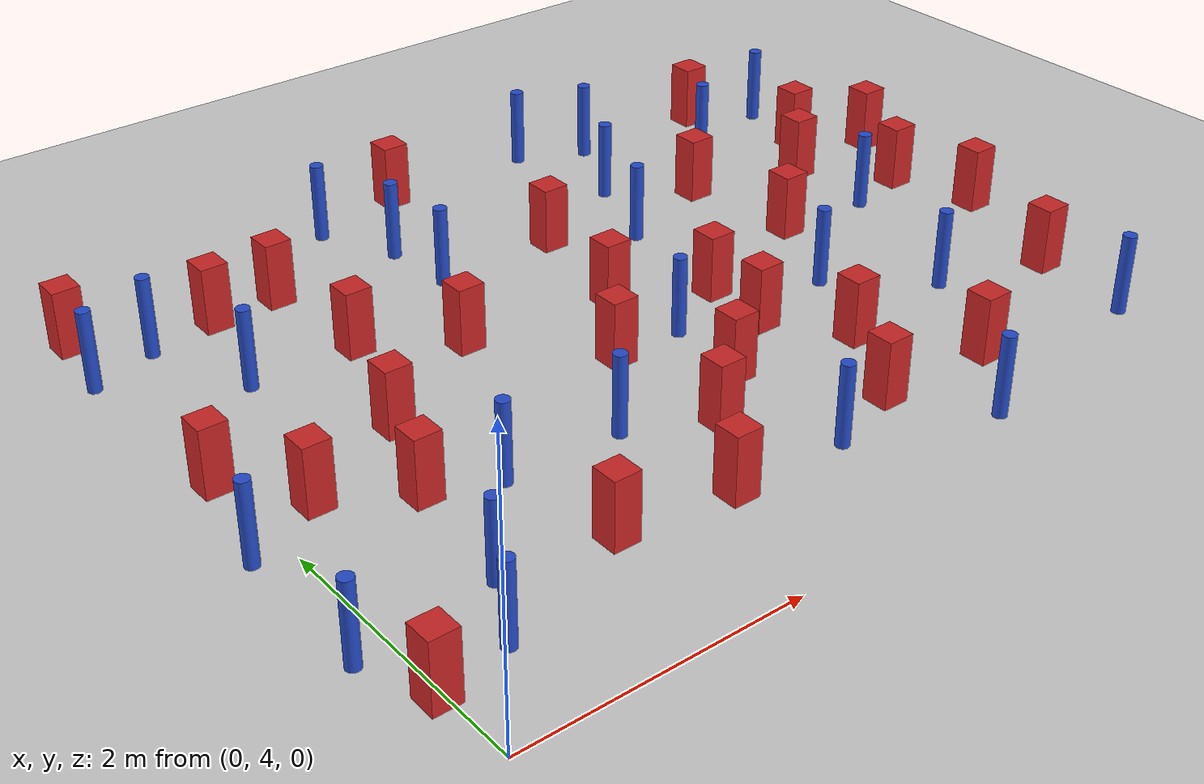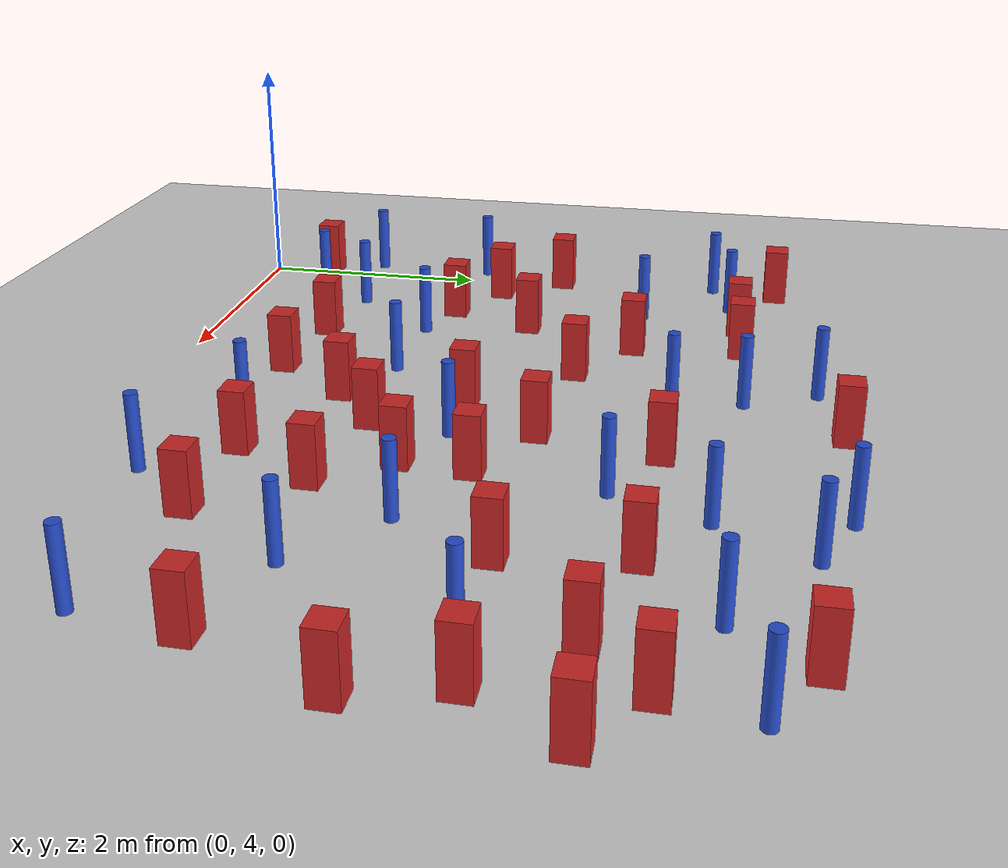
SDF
<sdf version="1.6">
 <world name="default">
  <model name="ground_plane">
   <static>1</static>
   <link name="link">
    <collision name="collision">
     <geometry><plane><normal>0 0 1</normal><size>100 100</size></plane></geometry>
     <surface><friction><ode><mu>100</mu><mu2>50</mu2></ode></friction></surface>
    </collision>
    <visual name="visual">
     <cast_shadows>0</cast_shadows>
     <geometry><plane><normal>0 0 1</normal><size>100 100</size></plane></geometry>
     <material>
      <ambient>1.0 1.0 1.0 1.0</ambient>
      <diffuse>0.8 0.8 0.8 1.0</diffuse>
      <specular>0.01 0.01 0.01 1.000000</specular>
     </material>
    </visual>
   </link>
  </model>
  <model name="pole_obstacle6">
   <static>true</static>
   <pose>2.43207186262 8.13492291357 -9.4761961606e-06 5.49618799729e-07 2.36310414e-07 -1.55090534824e-07</pose>
   <link name="link">
    <pose>0 0 0.3 0 -0 0</pose>
    <inertial>
     <mass>1</mass>
     <inertia><ixx>0.145833</ixx><ixy>0</ixy><ixz>0</ixz><iyy>0.145833</iyy><iyz>0</iyz><izz>0.125</izz></inertia>
    </inertial>
    <collision name="collision">
     <geometry><cylinder><radius>0.05</radius><length>.6</length></cylinder></geometry>
    </collision>
    <visual name="visual">
     <geometry><cylinder><radius>0.05</radius><length>.6</length></cylinder></geometry>
     <material>
      <script><name>Gazebo/Blue</name><uri>file://media/materials/scripts/gazebo.material</uri></script>
     </material>
    </visual>
   </link>
  </model>
  <model name="square_post_obstacle11">
   <static>true</static>
   <pose>0.863928847242 8.6175819762 -6.11067671241e-07 -5.50515727128e-06 -8.79689657224e-07 2.37013304536e-05</pose>
   <link name="link">
    <pose>0 0 0.25 0 -0 0</pose>
    <inertial>
     <mass>100</mass>
     <inertia>
      <ixx>0.166667</ixx>
      <ixy>0</ixy>
      <ixz>0</ixz>
      <iyy>0.166667</iyy>
      <iyz>0</iyz>
      <izz>0.166667</izz>
     </inertia>
    </inertial>
    <collision name="collision"><geometry><box><size>.2 .2 .5</size></box></geometry></collision>
    <visual name="visual">
     <geometry><box><size>.2 .2 .5</size></box></geometry>
     <material>
      <script><name>Gazebo/Red</name><uri>file://media/materials/scripts/gazebo.material</uri></script>
     </material>
    </visual>
   </link>
  </model>
  <model name="pole_obstacle16">
   <static>true</static>
   <pose>1.33987430858 5.87765892796 -9.47619616065e-06 5.49618799737e-07 2.36310414061e-07 -1.550905348e-07</pose>
   <link name="link">
    <pose>0 0 0.3 0 -0 0</pose>
    <inertial>
     <mass>1</mass>
     <inertia><ixx>0.145833</ixx><ixy>0</ixy><ixz>0</ixz><iyy>0.145833</iyy><iyz>0</iyz><izz>0.125</izz></inertia>
    </inertial>
    <collision name="collision">
     <geometry><cylinder><radius>0.05</radius><length>.6</length></cylinder></geometry>
    </collision>
    <visual name="visual">
     <geometry><cylinder><radius>0.05</radius><length>.6</length></cylinder></geometry>
     <material>
      <script><name>Gazebo/Blue</name><uri>file://media/materials/scripts/gazebo.material</uri></script>
     </material>
    </visual>
   </link>
  </model>
  <model name="pole_obstacle20">
   <static>true</static>
   <pose>0.742205972916 5.1449259144 -9.47619616065e-06 5.49618799737e-07 2.36310414065e-07 -1.55090534796e-07</pose>
   <link name="link">
    <pose>0 0 0.3 0 -0 0</pose>
    <inertial>
     <mass>1</mass>
     <inertia><ixx>0.145833</ixx><ixy>0</ixy><ixz>0</ixz><iyy>0.145833</iyy><iyz>0</iyz><izz>0.125</izz></inertia>
    </inertial>
    <collision name="collision">
     <geometry><cylinder><radius>0.05</radius><length>.6</length></cylinder></geometry>
    </collision>
    <visual name="visual">
     <geometry><cylinder><radius>0.05</radius><length>.6</length></cylinder></geometry>
     <material>
      <script><name>Gazebo/Blue</name><uri>file://media/materials/scripts/gazebo.material</uri></script>
     </material>
    </visual>
   </link>
  </model>
  <model name="pole_obstacle32">
   <static>true</static>
   <pose>4.22618861333 4.52051680901 -9.47619616065e-06 5.49618799737e-07 2.36310414037e-07 -1.55090534814e-07</pose>
   <link name="link">
    <pose>0 0 0.3 0 -0 0</pose>
    <inertial>
     <mass>1</mass>
     <inertia><ixx>0.145833</ixx><ixy>0</ixy><ixz>0</ixz><iyy>0.145833</iyy><iyz>0</iyz><izz>0.125</izz></inertia>
    </inertial>
    <collision name="collision">
     <geometry><cylinder><radius>0.05</radius><length>.6</length></cylinder></geometry>
    </collision>
    <visual name="visual">
     <geometry><cylinder><radius>0.05</radius><length>.6</length></cylinder></geometry>
     <material>
      <script><name>Gazebo/Blue</name><uri>file://media/materials/scripts/gazebo.material</uri></script>
     </material>
    </visual>
   </link>
  </model>
  <model name="square_post_obstacle28">
   <static>true</static>
   <pose>-0.0483559570447 8.94037576271 -6.11067671241e-07 -5.50515727128e-06 -8.79689657224e-07 2.37013304536e-05</pose>
   <link name="link">
    <pose>0 0 0.25 0 -0 0</pose>
    <inertial>
     <mass>100</mass>
     <inertia>
      <ixx>0.166667</ixx>
      <ixy>0</ixy>
      <ixz>0</ixz>
      <iyy>0.166667</iyy>
      <iyz>0</iyz>
      <izz>0.166667</izz>
     </inertia>
    </inertial>
    <collision name="collision"><geometry><box><size>.2 .2 .5</size></box></geometry></collision>
    <visual name="visual">
     <geometry><box><size>.2 .2 .5</size></box></geometry>
     <material>
      <script><name>Gazebo/Red</name><uri>file://media/materials/scripts/gazebo.material</uri></script>
     </material>
    </visual>
   </link>
  </model>
  <model name="pole_obstacle42">
   <static>true</static>
   <pose>5.17454983534 5.89900063454 -9.47619616065e-06 5.49618799737e-07 2.36310414037e-07 -1.55090534814e-07</pose>
   <link name="link">
    <pose>0 0 0.3 0 -0 0</pose>
    <inertial>
     <mass>1</mass>
     <inertia><ixx>0.145833</ixx><ixy>0</ixy><ixz>0</ixz><iyy>0.145833</iyy><iyz>0</iyz><izz>0.125</izz></inertia>
    </inertial>
    <collision name="collision">
     <geometry><cylinder><radius>0.05</radius><length>.6</length></cylinder></geometry>
    </collision>
    <visual name="visual">
     <geometry><cylinder><radius>0.05</radius><length>.6</length></cylinder></geometry>
     <material>
      <script><name>Gazebo/Blue</name><uri>file://media/materials/scripts/gazebo.material</uri></script>
     </material>
    </visual>
   </link>
  </model>
  <model name="square_post_obstacle31">
   <static>true</static>
   <pose>3.83713167161 6.82906425294 -6.11067671241e-07 -5.50515727128e-06 -8.79689657224e-07 2.37013304536e-05</pose>
   <link name="link">
    <pose>0 0 0.25 0 -0 0</pose>
    <inertial>
     <mass>100</mass>
     <inertia>
      <ixx>0.166667</ixx>
      <ixy>0</ixy>
      <ixz>0</ixz>
      <iyy>0.166667</iyy>
      <iyz>0</iyz>
      <izz>0.166667</izz>
     </inertia>
    </inertial>
    <collision name="collision"><geometry><box><size>.2 .2 .5</size></box></geometry></collision>
    <visual name="visual">
     <geometry><box><size>.2 .2 .5</size></box></geometry>
     <material>
      <script><name>Gazebo/Red</name><uri>file://media/materials/scripts/gazebo.material</uri></script>
     </material>
    </visual>
   </link>
  </model>
  <model name="square_post_obstacle35">
   <static>true</static>
   <pose>1.51465073356 5.0295000646 -6.11067671241e-07 -5.50515727128e-06 -8.79689657224e-07 2.37013304536e-05</pose>
   <link name="link">
    <pose>0 0 0.25 0 -0 0</pose>
    <inertial>
     <mass>100</mass>
     <inertia>
      <ixx>0.166667</ixx>
      <ixy>0</ixy>
      <ixz>0</ixz>
      <iyy>0.166667</iyy>
      <iyz>0</iyz>
      <izz>0.166667</izz>
     </inertia>
    </inertial>
    <collision name="collision"><geometry><box><size>.2 .2 .5</size></box></geometry></collision>
    <visual name="visual">
     <geometry><box><size>.2 .2 .5</size></box></geometry>
     <material>
      <script><name>Gazebo/Red</name><uri>file://media/materials/scripts/gazebo.material</uri></script>
     </material>
    </visual>
   </link>
  </model>
  <model name="square_post_obstacle40">
   <static>true</static>
   <pose>6.46954681803 7.924433819 -6.11067671241e-07 -5.50515727128e-06 -8.79689657224e-07 2.37013304536e-05</pose>
   <link name="link">
    <pose>0 0 0.25 0 -0 0</pose>
    <inertial>
     <mass>100</mass>
     <inertia>
      <ixx>0.166667</ixx>
      <ixy>0</ixy>
      <ixz>0</ixz>
      <iyy>0.166667</iyy>
      <iyz>0</iyz>
      <izz>0.166667</izz>
     </inertia>
    </inertial>
    <collision name="collision"><geometry><box><size>.2 .2 .5</size></box></geometry></collision>
    <visual name="visual">
     <geometry><box><size>.2 .2 .5</size></box></geometry>
     <material>
      <script><name>Gazebo/Red</name><uri>file://media/materials/scripts/gazebo.material</uri></script>
     </material>
    </visual>
   </link>
  </model>
  <model name="square_post_obstacle42">
   <static>true</static>
   <pose>2.05650922155 7.31954242078 -6.11067671241e-07 -5.50515727128e-06 -8.79689657224e-07 2.37013304536e-05</pose>
   <link name="link">
    <pose>0 0 0.25 0 -0 0</pose>
    <inertial>
     <mass>100</mass>
     <inertia>
      <ixx>0.166667</ixx>
      <ixy>0</ixy>
      <ixz>0</ixz>
      <iyy>0.166667</iyy>
      <iyz>0</iyz>
      <izz>0.166667</izz>
     </inertia>
    </inertial>
    <collision name="collision"><geometry><box><size>.2 .2 .5</size></box></geometry></collision>
    <visual name="visual">
     <geometry><box><size>.2 .2 .5</size></box></geometry>
     <material>
      <script><name>Gazebo/Red</name><uri>file://media/materials/scripts/gazebo.material</uri></script>
     </material>
    </visual>
   </link>
  </model>
  <model name="pole_obstacle57">
   <static>true</static>
   <pose>6.11625431628 8.87869215951 -9.47619616065e-06 5.49618799737e-07 2.36310414065e-07 -1.55090534796e-07</pose>
   <link name="link">
    <pose>0 0 0.3 0 -0 0</pose>
    <inertial>
     <mass>1</mass>
     <inertia><ixx>0.145833</ixx><ixy>0</ixy><ixz>0</ixz><iyy>0.145833</iyy><iyz>0</iyz><izz>0.125</izz></inertia>
    </inertial>
    <collision name="collision">
     <geometry><cylinder><radius>0.05</radius><length>.6</length></cylinder></geometry>
    </collision>
    <visual name="visual">
     <geometry><cylinder><radius>0.05</radius><length>.6</length></cylinder></geometry>
     <material>
      <script><name>Gazebo/Blue</name><uri>file://media/materials/scripts/gazebo.material</uri></script>
     </material>
    </visual>
   </link>
  </model>
  <model name="pole_obstacle59">
   <static>true</static>
   <pose>5.3128377282 8.63013611454 -9.47619616065e-06 5.49618799737e-07 2.36310414065e-07 -1.55090534796e-07</pose>
   <link name="link">
    <pose>0 0 0.3 0 -0 0</pose>
    <inertial>
     <mass>1</mass>
     <inertia><ixx>0.145833</ixx><ixy>0</ixy><ixz>0</ixz><iyy>0.145833</iyy><iyz>0</iyz><izz>0.125</izz></inertia>
    </inertial>
    <collision name="collision">
     <geometry><cylinder><radius>0.05</radius><length>.6</length></cylinder></geometry>
    </collision>
    <visual name="visual">
     <geometry><cylinder><radius>0.05</radius><length>.6</length></cylinder></geometry>
     <material>
      <script><name>Gazebo/Blue</name><uri>file://media/materials/scripts/gazebo.material</uri></script>
     </material>
    </visual>
   </link>
  </model>
  <model name="square_post_obstacle46">
   <static>true</static>
   <pose>2.3420618887 4.92568637448 -6.11067671241e-07 -5.50515727128e-06 -8.79689657224e-07 2.37013304536e-05</pose>
   <link name="link">
    <pose>0 0 0.25 0 -0 0</pose>
    <inertial>
     <mass>100</mass>
     <inertia>
      <ixx>0.166667</ixx>
      <ixy>0</ixy>
      <ixz>0</ixz>
      <iyy>0.166667</iyy>
      <iyz>0</iyz>
      <izz>0.166667</izz>
     </inertia>
    </inertial>
    <collision name="collision"><geometry><box><size>.2 .2 .5</size></box></geometry></collision>
    <visual name="visual">
     <geometry><box><size>.2 .2 .5</size></box></geometry>
     <material>
      <script><name>Gazebo/Red</name><uri>file://media/materials/scripts/gazebo.material</uri></script>
     </material>
    </visual>
   </link>
  </model>
  <model name="square_post_obstacle49">
   <static>true</static>
   <pose>4.7629140104 8.09287901922 -6.11067671241e-07 -5.50515727128e-06 -8.79689657224e-07 2.37013304536e-05</pose>
   <link name="link">
    <pose>0 0 0.25 0 -0 0</pose>
    <inertial>
     <mass>100</mass>
     <inertia>
      <ixx>0.166667</ixx>
      <ixy>0</ixy>
      <ixz>0</ixz>
      <iyy>0.166667</iyy>
      <iyz>0</iyz>
      <izz>0.166667</izz>
     </inertia>
    </inertial>
    <collision name="collision"><geometry><box><size>.2 .2 .5</size></box></geometry></collision>
    <visual name="visual">
     <geometry><box><size>.2 .2 .5</size></box></geometry>
     <material>
      <script><name>Gazebo/Red</name><uri>file://media/materials/scripts/gazebo.material</uri></script>
     </material>
    </visual>
   </link>
  </model>
  <model name="square_post_obstacle50">
   <static>true</static>
   <pose>1.13335853004 6.77449179941 -6.11067671241e-07 -5.50515727128e-06 -8.79689657224e-07 2.37013304536e-05</pose>
   <link name="link">
    <pose>0 0 0.25 0 -0 0</pose>
    <inertial>
     <mass>100</mass>
     <inertia>
      <ixx>0.166667</ixx>
      <ixy>0</ixy>
      <ixz>0</ixz>
      <iyy>0.166667</iyy>
      <iyz>0</iyz>
      <izz>0.166667</izz>
     </inertia>
    </inertial>
    <collision name="collision"><geometry><box><size>.2 .2 .5</size></box></geometry></collision>
    <visual name="visual">
     <geometry><box><size>.2 .2 .5</size></box></geometry>
     <material>
      <script><name>Gazebo/Red</name><uri>file://media/materials/scripts/gazebo.material</uri></script>
     </material>
    </visual>
   </link>
  </model>
  <model name="pole_obstacle68">
   <static>true</static>
   <pose>-0.238954877606 6.12001920168 -9.47619616065e-06 5.49618799737e-07 2.36310414064e-07 -1.55090534799e-07</pose>
   <link name="link">
    <pose>0 0 0.3 0 -0 0</pose>
    <inertial>
     <mass>1</mass>
     <inertia><ixx>0.145833</ixx><ixy>0</ixy><ixz>0</ixz><iyy>0.145833</iyy><iyz>0</iyz><izz>0.125</izz></inertia>
    </inertial>
    <collision name="collision">
     <geometry><cylinder><radius>0.05</radius><length>.6</length></cylinder></geometry>
    </collision>
    <visual name="visual">
     <geometry><cylinder><radius>0.05</radius><length>.6</length></cylinder></geometry>
     <material>
      <script><name>Gazebo/Blue</name><uri>file://media/materials/scripts/gazebo.material</uri></script>
     </material>
    </visual>
   </link>
  </model>
  <model name="square_post_obstacle52">
   <static>true</static>
   <pose>1.44782764579 7.73571127424 -6.11067671241e-07 -5.50515727128e-06 -8.79689657224e-07 2.37013304536e-05</pose>
   <link name="link">
    <pose>0 0 0.25 0 -0 0</pose>
    <inertial>
     <mass>100</mass>
     <inertia>
      <ixx>0.166667</ixx>
      <ixy>0</ixy>
      <ixz>0</ixz>
      <iyy>0.166667</iyy>
      <iyz>0</iyz>
      <izz>0.166667</izz>
     </inertia>
    </inertial>
    <collision name="collision"><geometry><box><size>.2 .2 .5</size></box></geometry></collision>
    <visual name="visual">
     <geometry><box><size>.2 .2 .5</size></box></geometry>
     <material>
      <script><name>Gazebo/Red</name><uri>file://media/materials/scripts/gazebo.material</uri></script>
     </material>
    </visual>
   </link>
  </model>
  <model name="square_post_obstacle53">
   <static>true</static>
   <pose>4.89098669698 7.18992147861 -6.11067671241e-07 -5.50515727128e-06 -8.79689657224e-07 2.37013304536e-05</pose>
   <link name="link">
    <pose>0 0 0.25 0 -0 0</pose>
    <inertial>
     <mass>100</mass>
     <inertia>
      <ixx>0.166667</ixx>
      <ixy>0</ixy>
      <ixz>0</ixz>
      <iyy>0.166667</iyy>
      <iyz>0</iyz>
      <izz>0.166667</izz>
     </inertia>
    </inertial>
    <collision name="collision"><geometry><box><size>.2 .2 .5</size></box></geometry></collision>
    <visual name="visual">
     <geometry><box><size>.2 .2 .5</size></box></geometry>
     <material>
      <script><name>Gazebo/Red</name><uri>file://media/materials/scripts/gazebo.material</uri></script>
     </material>
    </visual>
   </link>
  </model>
  <model name="square_post_obstacle56">
   <static>true</static>
   <pose>1.36745683117 8.6449078487 -6.11067671241e-07 -5.50515727128e-06 -8.79689657224e-07 2.37013304536e-05</pose>
   <link name="link">
    <pose>0 0 0.25 0 -0 0</pose>
    <inertial>
     <mass>100</mass>
     <inertia>
      <ixx>0.166667</ixx>
      <ixy>0</ixy>
      <ixz>0</ixz>
      <iyy>0.166667</iyy>
      <iyz>0</iyz>
      <izz>0.166667</izz>
     </inertia>
    </inertial>
    <collision name="collision"><geometry><box><size>.2 .2 .5</size></box></geometry></collision>
    <visual name="visual">
     <geometry><box><size>.2 .2 .5</size></box></geometry>
     <material>
      <script><name>Gazebo/Red</name><uri>file://media/materials/scripts/gazebo.material</uri></script>
     </material>
    </visual>
   </link>
  </model>
  <model name="square_post_obstacle68">
   <static>true</static>
   <pose>4.68829394861 5.07552768889 -6.11067671241e-07 -5.50515727128e-06 -8.79689657224e-07 2.37013304536e-05</pose>
   <link name="link">
    <pose>0 0 0.25 0 -0 0</pose>
    <inertial>
     <mass>100</mass>
     <inertia>
      <ixx>0.166667</ixx>
      <ixy>0</ixy>
      <ixz>0</ixz>
      <iyy>0.166667</iyy>
      <iyz>0</iyz>
      <izz>0.166667</izz>
     </inertia>
    </inertial>
    <collision name="collision"><geometry><box><size>.2 .2 .5</size></box></geometry></collision>
    <visual name="visual">
     <geometry><box><size>.2 .2 .5</size></box></geometry>
     <material>
      <script><name>Gazebo/Red</name><uri>file://media/materials/scripts/gazebo.material</uri></script>
     </material>
    </visual>
   </link>
  </model>
  <model name="pole_obstacle80">
   <static>true</static>
   <pose>0.668537305933 7.75599905433 -9.47619616065e-06 5.49618799737e-07 2.36310414065e-07 -1.55090534796e-07</pose>
   <link name="link">
    <pose>0 0 0.3 0 -0 0</pose>
    <inertial>
     <mass>1</mass>
     <inertia><ixx>0.145833</ixx><ixy>0</ixy><ixz>0</ixz><iyy>0.145833</iyy><iyz>0</iyz><izz>0.125</izz></inertia>
    </inertial>
    <collision name="collision">
     <geometry><cylinder><radius>0.05</radius><length>.6</length></cylinder></geometry>
    </collision>
    <visual name="visual">
     <geometry><cylinder><radius>0.05</radius><length>.6</length></cylinder></geometry>
     <material>
      <script><name>Gazebo/Blue</name><uri>file://media/materials/scripts/gazebo.material</uri></script>
     </material>
    </visual>
   </link>
  </model>
  <model name="pole_obstacle82">
   <static>true</static>
   <pose>-0.137236762534 8.36235014784 -9.47619616065e-06 5.49618799737e-07 2.36310414038e-07 -1.55090534815e-07</pose>
   <link name="link">
    <pose>0 0 0.3 0 -0 0</pose>
    <inertial>
     <mass>1</mass>
     <inertia><ixx>0.145833</ixx><ixy>0</ixy><ixz>0</ixz><iyy>0.145833</iyy><iyz>0</iyz><izz>0.125</izz></inertia>
    </inertial>
    <collision name="collision">
     <geometry><cylinder><radius>0.05</radius><length>.6</length></cylinder></geometry>
    </collision>
    <visual name="visual">
     <geometry><cylinder><radius>0.05</radius><length>.6</length></cylinder></geometry>
     <material>
      <script><name>Gazebo/Blue</name><uri>file://media/materials/scripts/gazebo.material</uri></script>
     </material>
    </visual>
   </link>
  </model>
  <model name="pole_obstacle84">
   <static>true</static>
   <pose>3.20759305503 4.90517188989 -9.47619616065e-06 5.49618799738e-07 2.3631041406e-07 -1.55090534801e-07</pose>
   <link name="link">
    <pose>0 0 0.3 0 -0 0</pose>
    <inertial>
     <mass>1</mass>
     <inertia><ixx>0.145833</ixx><ixy>0</ixy><ixz>0</ixz><iyy>0.145833</iyy><iyz>0</iyz><izz>0.125</izz></inertia>
    </inertial>
    <collision name="collision">
     <geometry><cylinder><radius>0.05</radius><length>.6</length></cylinder></geometry>
    </collision>
    <visual name="visual">
     <geometry><cylinder><radius>0.05</radius><length>.6</length></cylinder></geometry>
     <material>
      <script><name>Gazebo/Blue</name><uri>file://media/materials/scripts/gazebo.material</uri></script>
     </material>
    </visual>
   </link>
  </model>
  <model name="square_post_obstacle83">
   <static>true</static>
   <pose>5.97994175165 5.6477463719 -6.11067671241e-07 -5.50515727128e-06 -8.79689657224e-07 2.37013304536e-05</pose>
   <link name="link">
    <pose>0 0 0.25 0 -0 0</pose>
    <inertial>
     <mass>100</mass>
     <inertia>
      <ixx>0.166667</ixx>
      <ixy>0</ixy>
      <ixz>0</ixz>
      <iyy>0.166667</iyy>
      <iyz>0</iyz>
      <izz>0.166667</izz>
     </inertia>
    </inertial>
    <collision name="collision"><geometry><box><size>.2 .2 .5</size></box></geometry></collision>
    <visual name="visual">
     <geometry><box><size>.2 .2 .5</size></box></geometry>
     <material>
      <script><name>Gazebo/Red</name><uri>file://media/materials/scripts/gazebo.material</uri></script>
     </material>
    </visual>
   </link>
  </model>
  <model name="square_post_obstacle90">
   <static>true</static>
   <pose>3.37375898683 8.12603994693 -6.11067671241e-07 -5.50515727128e-06 -8.79689657224e-07 2.37013304536e-05</pose>
   <link name="link">
    <pose>0 0 0.25 0 -0 0</pose>
    <inertial>
     <mass>100</mass>
     <inertia>
      <ixx>0.166667</ixx>
      <ixy>0</ixy>
      <ixz>0</ixz>
      <iyy>0.166667</iyy>
      <iyz>0</iyz>
      <izz>0.166667</izz>
     </inertia>
    </inertial>
    <collision name="collision"><geometry><box><size>.2 .2 .5</size></box></geometry></collision>
    <visual name="visual">
     <geometry><box><size>.2 .2 .5</size></box></geometry>
     <material>
      <script><name>Gazebo/Red</name><uri>file://media/materials/scripts/gazebo.material</uri></script>
     </material>
    </visual>
   </link>
  </model>
  <model name="square_post_obstacle92">
   <static>true</static>
   <pose>-0.0422790247516 4.5587872964 -6.11067671241e-07 -5.50515727128e-06 -8.79689657224e-07 2.37013304536e-05</pose>
   <link name="link">
    <pose>0 0 0.25 0 -0 0</pose>
    <inertial>
     <mass>100</mass>
     <inertia>
      <ixx>0.166667</ixx>
      <ixy>0</ixy>
      <ixz>0</ixz>
      <iyy>0.166667</iyy>
      <iyz>0</iyz>
      <izz>0.166667</izz>
     </inertia>
    </inertial>
    <collision name="collision"><geometry><box><size>.2 .2 .5</size></box></geometry></collision>
    <visual name="visual">
     <geometry><box><size>.2 .2 .5</size></box></geometry>
     <material>
      <script><name>Gazebo/Red</name><uri>file://media/materials/scripts/gazebo.material</uri></script>
     </material>
    </visual>
   </link>
  </model>
  <model name="square_post_obstacle94">
   <static>true</static>
   <pose>2.8469483621 9.44492391961 -6.11067671241e-07 -5.50515727128e-06 -8.79689657224e-07 2.37013304536e-05</pose>
   <link name="link">
    <pose>0 0 0.25 0 -0 0</pose>
    <inertial>
     <mass>100</mass>
     <inertia>
      <ixx>0.166667</ixx>
      <ixy>0</ixy>
      <ixz>0</ixz>
      <iyy>0.166667</iyy>
      <iyz>0</iyz>
      <izz>0.166667</izz>
     </inertia>
    </inertial>
    <collision name="collision"><geometry><box><size>.2 .2 .5</size></box></geometry></collision>
    <visual name="visual">
     <geometry><box><size>.2 .2 .5</size></box></geometry>
     <material>
      <script><name>Gazebo/Red</name><uri>file://media/materials/scripts/gazebo.material</uri></script>
     </material>
    </visual>
   </link>
  </model>
  <model name="square_post_obstacle96">
   <static>true</static>
   <pose>3.22564016477 5.91921045773 -6.11067671241e-07 -5.50515727128e-06 -8.79689657224e-07 2.37013304536e-05</pose>
   <link name="link">
    <pose>0 0 0.25 0 -0 0</pose>
    <inertial>
     <mass>100</mass>
     <inertia>
      <ixx>0.166667</ixx>
      <ixy>0</ixy>
      <ixz>0</ixz>
      <iyy>0.166667</iyy>
      <iyz>0</iyz>
      <izz>0.166667</izz>
     </inertia>
    </inertial>
    <collision name="collision"><geometry><box><size>.2 .2 .5</size></box></geometry></collision>
    <visual name="visual">
     <geometry><box><size>.2 .2 .5</size></box></geometry>
     <material>
      <script><name>Gazebo/Red</name><uri>file://media/materials/scripts/gazebo.material</uri></script>
     </material>
    </visual>
   </link>
  </model>
  <model name="pole_obstacle104">
   <static>true</static>
   <pose>4.04860355962 9.4295022542 -9.47619616065e-06 5.49618799737e-07 2.36310414062e-07 -1.55090534799e-07</pose>
   <link name="link">
    <pose>0 0 0.3 0 -0 0</pose>
    <inertial>
     <mass>1</mass>
     <inertia><ixx>0.145833</ixx><ixy>0</ixy><ixz>0</ixz><iyy>0.145833</iyy><iyz>0</iyz><izz>0.125</izz></inertia>
    </inertial>
    <collision name="collision">
     <geometry><cylinder><radius>0.05</radius><length>.6</length></cylinder></geometry>
    </collision>
    <visual name="visual">
     <geometry><cylinder><radius>0.05</radius><length>.6</length></cylinder></geometry>
     <material>
      <script><name>Gazebo/Blue</name><uri>file://media/materials/scripts/gazebo.material</uri></script>
     </material>
    </visual>
   </link>
  </model>
  <model name="square_post_obstacle116">
   <static>true</static>
   <pose>-0.054619040275 6.91866085949 -6.11067671241e-07 -5.50515727128e-06 -8.79689657224e-07 2.37013304536e-05</pose>
   <link name="link">
    <pose>0 0 0.25 0 -0 0</pose>
    <inertial>
     <mass>100</mass>
     <inertia>
      <ixx>0.166667</ixx>
      <ixy>0</ixy>
      <ixz>0</ixz>
      <iyy>0.166667</iyy>
      <iyz>0</iyz>
      <izz>0.166667</izz>
     </inertia>
    </inertial>
    <collision name="collision"><geometry><box><size>.2 .2 .5</size></box></geometry></collision>
    <visual name="visual">
     <geometry><box><size>.2 .2 .5</size></box></geometry>
     <material>
      <script><name>Gazebo/Red</name><uri>file://media/materials/scripts/gazebo.material</uri></script>
     </material>
    </visual>
   </link>
  </model>
  <model name="square_post_obstacle118">
   <static>true</static>
   <pose>5.65361634373 7.86356734071 -6.11067671241e-07 -5.50515727128e-06 -8.79689657224e-07 2.37013304536e-05</pose>
   <link name="link">
    <pose>0 0 0.25 0 -0 0</pose>
    <inertial>
     <mass>100</mass>
     <inertia>
      <ixx>0.166667</ixx>
      <ixy>0</ixy>
      <ixz>0</ixz>
      <iyy>0.166667</iyy>
      <iyz>0</iyz>
      <izz>0.166667</izz>
     </inertia>
    </inertial>
    <collision name="collision"><geometry><box><size>.2 .2 .5</size></box></geometry></collision>
    <visual name="visual">
     <geometry><box><size>.2 .2 .5</size></box></geometry>
     <material>
      <script><name>Gazebo/Red</name><uri>file://media/materials/scripts/gazebo.material</uri></script>
     </material>
    </visual>
   </link>
  </model>
  <model name="pole_obstacle122">
   <static>true</static>
   <pose>-0.245275645205 5.04143367219 -9.47619616065e-06 5.49618799737e-07 2.36310414064e-07 -1.55090534799e-07</pose>
   <link name="link">
    <pose>0 0 0.3 0 -0 0</pose>
    <inertial>
     <mass>1</mass>
     <inertia><ixx>0.145833</ixx><ixy>0</ixy><ixz>0</ixz><iyy>0.145833</iyy><iyz>0</iyz><izz>0.125</izz></inertia>
    </inertial>
    <collision name="collision">
     <geometry><cylinder><radius>0.05</radius><length>.6</length></cylinder></geometry>
    </collision>
    <visual name="visual">
     <geometry><cylinder><radius>0.05</radius><length>.6</length></cylinder></geometry>
     <material>
      <script><name>Gazebo/Blue</name><uri>file://media/materials/scripts/gazebo.material</uri></script>
     </material>
    </visual>
   </link>
  </model>
  <model name="pole_obstacle123">
   <static>true</static>
   <pose>2.20071437829 5.84776252102 -9.47619616065e-06 5.49618799738e-07 2.3631041406e-07 -1.55090534801e-07</pose>
   <link name="link">
    <pose>0 0 0.3 0 -0 0</pose>
    <inertial>
     <mass>1</mass>
     <inertia><ixx>0.145833</ixx><ixy>0</ixy><ixz>0</ixz><iyy>0.145833</iyy><iyz>0</iyz><izz>0.125</izz></inertia>
    </inertial>
    <collision name="collision">
     <geometry><cylinder><radius>0.05</radius><length>.6</length></cylinder></geometry>
    </collision>
    <visual name="visual">
     <geometry><cylinder><radius>0.05</radius><length>.6</length></cylinder></geometry>
     <material>
      <script><name>Gazebo/Blue</name><uri>file://media/materials/scripts/gazebo.material</uri></script>
     </material>
    </visual>
   </link>
  </model>
  <model name="pole_obstacle128">
   <static>true</static>
   <pose>4.54642619618 9.19956182933 -9.47619616065e-06 5.49618799737e-07 2.36310414065e-07 -1.55090534796e-07</pose>
   <link name="link">
    <pose>0 0 0.3 0 -0 0</pose>
    <inertial>
     <mass>1</mass>
     <inertia><ixx>0.145833</ixx><ixy>0</ixy><ixz>0</ixz><iyy>0.145833</iyy><iyz>0</iyz><izz>0.125</izz></inertia>
    </inertial>
    <collision name="collision">
     <geometry><cylinder><radius>0.05</radius><length>.6</length></cylinder></geometry>
    </collision>
    <visual name="visual">
     <geometry><cylinder><radius>0.05</radius><length>.6</length></cylinder></geometry>
     <material>
      <script><name>Gazebo/Blue</name><uri>file://media/materials/scripts/gazebo.material</uri></script>
     </material>
    </visual>
   </link>
  </model>
  <model name="pole_obstacle132">
   <static>true</static>
   <pose>4.21416629301 8.51505329266 -9.47619616065e-06 5.49618799737e-07 2.36310414065e-07 -1.55090534796e-07</pose>
   <link name="link">
    <pose>0 0 0.3 0 -0 0</pose>
    <inertial>
     <mass>1</mass>
     <inertia><ixx>0.145833</ixx><ixy>0</ixy><ixz>0</ixz><iyy>0.145833</iyy><iyz>0</iyz><izz>0.125</izz></inertia>
    </inertial>
    <collision name="collision">
     <geometry><cylinder><radius>0.05</radius><length>.6</length></cylinder></geometry>
    </collision>
    <visual name="visual">
     <geometry><cylinder><radius>0.05</radius><length>.6</length></cylinder></geometry>
     <material>
      <script><name>Gazebo/Blue</name><uri>file://media/materials/scripts/gazebo.material</uri></script>
     </material>
    </visual>
   </link>
  </model>
  <model name="square_post_obstacle129">
   <static>true</static>
   <pose>3.19943343447 7.1871258373 -6.11067671241e-07 -5.50515727128e-06 -8.79689657224e-07 2.37013304536e-05</pose>
   <link name="link">
    <pose>0 0 0.25 0 -0 0</pose>
    <inertial>
     <mass>100</mass>
     <inertia>
      <ixx>0.166667</ixx>
      <ixy>0</ixy>
      <ixz>0</ixz>
      <iyy>0.166667</iyy>
      <iyz>0</iyz>
      <izz>0.166667</izz>
     </inertia>
    </inertial>
    <collision name="collision"><geometry><box><size>.2 .2 .5</size></box></geometry></collision>
    <visual name="visual">
     <geometry><box><size>.2 .2 .5</size></box></geometry>
     <material>
      <script><name>Gazebo/Red</name><uri>file://media/materials/scripts/gazebo.material</uri></script>
     </material>
    </visual>
   </link>
  </model>
  <model name="pole_obstacle136">
   <static>true</static>
   <pose>5.88131614921 4.87611632535 -9.47619616065e-06 5.49618799737e-07 2.36310414037e-07 -1.55090534814e-07</pose>
   <link name="link">
    <pose>0 0 0.3 0 -0 0</pose>
    <inertial>
     <mass>1</mass>
     <inertia><ixx>0.145833</ixx><ixy>0</ixy><ixz>0</ixz><iyy>0.145833</iyy><iyz>0</iyz><izz>0.125</izz></inertia>
    </inertial>
    <collision name="collision">
     <geometry><cylinder><radius>0.05</radius><length>.6</length></cylinder></geometry>
    </collision>
    <visual name="visual">
     <geometry><cylinder><radius>0.05</radius><length>.6</length></cylinder></geometry>
     <material>
      <script><name>Gazebo/Blue</name><uri>file://media/materials/scripts/gazebo.material</uri></script>
     </material>
    </visual>
   </link>
  </model>
  <model name="pole_obstacle140">
   <static>true</static>
   <pose>2.378673884 8.68848571862 -9.4761961606e-06 5.49618799729e-07 2.36310414e-07 -1.55090534824e-07</pose>
   <link name="link">
    <pose>0 0 0.3 0 -0 0</pose>
    <inertial>
     <mass>1</mass>
     <inertia><ixx>0.145833</ixx><ixy>0</ixy><ixz>0</ixz><iyy>0.145833</iyy><iyz>0</iyz><izz>0.125</izz></inertia>
    </inertial>
    <collision name="collision">
     <geometry><cylinder><radius>0.05</radius><length>.6</length></cylinder></geometry>
    </collision>
    <visual name="visual">
     <geometry><cylinder><radius>0.05</radius><length>.6</length></cylinder></geometry>
     <material>
      <script><name>Gazebo/Blue</name><uri>file://media/materials/scripts/gazebo.material</uri></script>
     </material>
    </visual>
   </link>
  </model>
  <model name="pole_obstacle142">
   <static>true</static>
   <pose>4.53401231885 6.45529464607 -9.47619616065e-06 5.49618799737e-07 2.36310414037e-07 -1.55090534814e-07</pose>
   <link name="link">
    <pose>0 0 0.3 0 -0 0</pose>
    <inertial>
     <mass>1</mass>
     <inertia><ixx>0.145833</ixx><ixy>0</ixy><ixz>0</ixz><iyy>0.145833</iyy><iyz>0</iyz><izz>0.125</izz></inertia>
    </inertial>
    <collision name="collision">
     <geometry><cylinder><radius>0.05</radius><length>.6</length></cylinder></geometry>
    </collision>
    <visual name="visual">
     <geometry><cylinder><radius>0.05</radius><length>.6</length></cylinder></geometry>
     <material>
      <script><name>Gazebo/Blue</name><uri>file://media/materials/scripts/gazebo.material</uri></script>
     </material>
    </visual>
   </link>
  </model>
  <model name="square_post_obstacle143">
   <static>true</static>
   <pose>6.32757249024 6.62454546391 -6.11067671241e-07 -5.50515727128e-06 -8.79689657224e-07 2.37013304536e-05</pose>
   <link name="link">
    <pose>0 0 0.25 0 -0 0</pose>
    <inertial>
     <mass>100</mass>
     <inertia>
      <ixx>0.166667</ixx>
      <ixy>0</ixy>
      <ixz>0</ixz>
      <iyy>0.166667</iyy>
      <iyz>0</iyz>
      <izz>0.166667</izz>
     </inertia>
    </inertial>
    <collision name="collision"><geometry><box><size>.2 .2 .5</size></box></geometry></collision>
    <visual name="visual">
     <geometry><box><size>.2 .2 .5</size></box></geometry>
     <material>
      <script><name>Gazebo/Red</name><uri>file://media/materials/scripts/gazebo.material</uri></script>
     </material>
    </visual>
   </link>
  </model>
  <model name="pole_obstacle152">
   <static>true</static>
   <pose>3.94963476507 7.80539025637 -9.47619616065e-06 5.49618799738e-07 2.3631041406e-07 -1.55090534801e-07</pose>
   <link name="link">
    <pose>0 0 0.3 0 -0 0</pose>
    <inertial>
     <mass>1</mass>
     <inertia><ixx>0.145833</ixx><ixy>0</ixy><ixz>0</ixz><iyy>0.145833</iyy><iyz>0</iyz><izz>0.125</izz></inertia>
    </inertial>
    <collision name="collision">
     <geometry><cylinder><radius>0.05</radius><length>.6</length></cylinder></geometry>
    </collision>
    <visual name="visual">
     <geometry><cylinder><radius>0.05</radius><length>.6</length></cylinder></geometry>
     <material>
      <script><name>Gazebo/Blue</name><uri>file://media/materials/scripts/gazebo.material</uri></script>
     </material>
    </visual>
   </link>
  </model>
  <model name="square_post_obstacle148">
   <static>true</static>
   <pose>4.17598056634 5.76192240293 -6.11067671241e-07 -5.50515727128e-06 -8.79689657224e-07 2.37013304536e-05</pose>
   <link name="link">
    <pose>0 0 0.25 0 -0 0</pose>
    <inertial>
     <mass>100</mass>
     <inertia>
      <ixx>0.166667</ixx>
      <ixy>0</ixy>
      <ixz>0</ixz>
      <iyy>0.166667</iyy>
      <iyz>0</iyz>
      <izz>0.166667</izz>
     </inertia>
    </inertial>
    <collision name="collision"><geometry><box><size>.2 .2 .5</size></box></geometry></collision>
    <visual name="visual">
     <geometry><box><size>.2 .2 .5</size></box></geometry>
     <material>
      <script><name>Gazebo/Red</name><uri>file://media/materials/scripts/gazebo.material</uri></script>
     </material>
    </visual>
   </link>
  </model>
  <model name="square_post_obstacle150">
   <static>true</static>
   <pose>6.1404423866 7.27794361191 -6.11067671241e-07 -5.50515727128e-06 -8.79689657224e-07 2.37013304536e-05</pose>
   <link name="link">
    <pose>0 0 0.25 0 -0 0</pose>
    <inertial>
     <mass>100</mass>
     <inertia>
      <ixx>0.166667</ixx>
      <ixy>0</ixy>
      <ixz>0</ixz>
      <iyy>0.166667</iyy>
      <iyz>0</iyz>
      <izz>0.166667</izz>
     </inertia>
    </inertial>
    <collision name="collision"><geometry><box><size>.2 .2 .5</size></box></geometry></collision>
    <visual name="visual">
     <geometry><box><size>.2 .2 .5</size></box></geometry>
     <material>
      <script><name>Gazebo/Red</name><uri>file://media/materials/scripts/gazebo.material</uri></script>
     </material>
    </visual>
   </link>
  </model>
  <model name="square_post_obstacle153">
   <static>true</static>
   <pose>3.79951857748 6.29495532688 -6.11067671241e-07 -5.50515727128e-06 -8.79689657224e-07 2.37013304536e-05</pose>
   <link name="link">
    <pose>0 0 0.25 0 -0 0</pose>
    <inertial>
     <mass>100</mass>
     <inertia>
      <ixx>0.166667</ixx>
      <ixy>0</ixy>
      <ixz>0</ixz>
      <iyy>0.166667</iyy>
      <iyz>0</iyz>
      <izz>0.166667</izz>
     </inertia>
    </inertial>
    <collision name="collision"><geometry><box><size>.2 .2 .5</size></box></geometry></collision>
    <visual name="visual">
     <geometry><box><size>.2 .2 .5</size></box></geometry>
     <material>
      <script><name>Gazebo/Red</name><uri>file://media/materials/scripts/gazebo.material</uri></script>
     </material>
    </visual>
   </link>
  </model>
  <model name="pole_obstacle159">
   <static>true</static>
   <pose>2.10964484364 9.26458697835 -9.4761961606e-06 5.49618799729e-07 2.36310414e-07 -1.55090534824e-07</pose>
   <link name="link">
    <pose>0 0 0.3 0 -0 0</pose>
    <inertial>
     <mass>1</mass>
     <inertia><ixx>0.145833</ixx><ixy>0</ixy><ixz>0</ixz><iyy>0.145833</iyy><iyz>0</iyz><izz>0.125</izz></inertia>
    </inertial>
    <collision name="collision">
     <geometry><cylinder><radius>0.05</radius><length>.6</length></cylinder></geometry>
    </collision>
    <visual name="visual">
     <geometry><cylinder><radius>0.05</radius><length>.6</length></cylinder></geometry>
     <material>
      <script><name>Gazebo/Blue</name><uri>file://media/materials/scripts/gazebo.material</uri></script>
     </material>
    </visual>
   </link>
  </model>
  <model name="pole_obstacle163">
   <static>true</static>
   <pose>3.28489525487 6.54729368072 -9.47619616065e-06 5.49618799738e-07 2.3631041406e-07 -1.55090534801e-07</pose>
   <link name="link">
    <pose>0 0 0.3 0 -0 0</pose>
    <inertial>
     <mass>1</mass>
     <inertia><ixx>0.145833</ixx><ixy>0</ixy><ixz>0</ixz><iyy>0.145833</iyy><iyz>0</iyz><izz>0.125</izz></inertia>
    </inertial>
    <collision name="collision">
     <geometry><cylinder><radius>0.05</radius><length>.6</length></cylinder></geometry>
    </collision>
    <visual name="visual">
     <geometry><cylinder><radius>0.05</radius><length>.6</length></cylinder></geometry>
     <material>
      <script><name>Gazebo/Blue</name><uri>file://media/materials/scripts/gazebo.material</uri></script>
     </material>
    </visual>
   </link>
  </model>
  <model name="square_post_obstacle171">
   <static>true</static>
   <pose>0.867434217286 6.05881369185 -6.11067671241e-07 -5.50515727128e-06 -8.79689657224e-07 2.37013304536e-05</pose>
   <link name="link">
    <pose>0 0 0.25 0 -0 0</pose>
    <inertial>
     <mass>100</mass>
     <inertia>
      <ixx>0.166667</ixx>
      <ixy>0</ixy>
      <ixz>0</ixz>
      <iyy>0.166667</iyy>
      <iyz>0</iyz>
      <izz>0.166667</izz>
     </inertia>
    </inertial>
    <collision name="collision"><geometry><box><size>.2 .2 .5</size></box></geometry></collision>
    <visual name="visual">
     <geometry><box><size>.2 .2 .5</size></box></geometry>
     <material>
      <script><name>Gazebo/Red</name><uri>file://media/materials/scripts/gazebo.material</uri></script>
     </material>
    </visual>
   </link>
  </model>
  <model name="pole_obstacle171">
   <static>true</static>
   <pose>5.64590659598 7.14638831387 -9.47619616065e-06 5.49618799737e-07 2.36310414037e-07 -1.55090534814e-07</pose>
   <link name="link">
    <pose>0 0 0.3 0 -0 0</pose>
    <inertial>
     <mass>1</mass>
     <inertia><ixx>0.145833</ixx><ixy>0</ixy><ixz>0</ixz><iyy>0.145833</iyy><iyz>0</iyz><izz>0.125</izz></inertia>
    </inertial>
    <collision name="collision">
     <geometry><cylinder><radius>0.05</radius><length>.6</length></cylinder></geometry>
    </collision>
    <visual name="visual">
     <geometry><cylinder><radius>0.05</radius><length>.6</length></cylinder></geometry>
     <material>
      <script><name>Gazebo/Blue</name><uri>file://media/materials/scripts/gazebo.material</uri></script>
     </material>
    </visual>
   </link>
  </model>
  <model name="square_post_obstacle186">
   <static>true</static>
   <pose>0.321964880765 6.38354234633 -6.11067671241e-07 -5.50515727128e-06 -8.79689657224e-07 2.37013304536e-05</pose>
   <link name="link">
    <pose>0 0 0.25 0 -0 0</pose>
    <inertial>
     <mass>100</mass>
     <inertia>
      <ixx>0.166667</ixx>
      <ixy>0</ixy>
      <ixz>0</ixz>
      <iyy>0.166667</iyy>
      <iyz>0</iyz>
      <izz>0.166667</izz>
     </inertia>
    </inertial>
    <collision name="collision"><geometry><box><size>.2 .2 .5</size></box></geometry></collision>
    <visual name="visual">
     <geometry><box><size>.2 .2 .5</size></box></geometry>
     <material>
      <script><name>Gazebo/Red</name><uri>file://media/materials/scripts/gazebo.material</uri></script>
     </material>
    </visual>
   </link>
  </model>
  <model name="square_post_obstacle189">
   <static>true</static>
   <pose>3.78806045146 5.10361435431 -6.11067671241e-07 -5.50515727128e-06 -8.79689657224e-07 2.37013304536e-05</pose>
   <link name="link">
    <pose>0 0 0.25 0 -0 0</pose>
    <inertial>
     <mass>100</mass>
     <inertia>
      <ixx>0.166667</ixx>
      <ixy>0</ixy>
      <ixz>0</ixz>
      <iyy>0.166667</iyy>
      <iyz>0</iyz>
      <izz>0.166667</izz>
     </inertia>
    </inertial>
    <collision name="collision"><geometry><box><size>.2 .2 .5</size></box></geometry></collision>
    <visual name="visual">
     <geometry><box><size>.2 .2 .5</size></box></geometry>
     <material>
      <script><name>Gazebo/Red</name><uri>file://media/materials/scripts/gazebo.material</uri></script>
     </material>
    </visual>
   </link>
  </model>
  <model name="square_post_obstacle192">
   <static>true</static>
   <pose>6.01155384372 8.28366136538 -6.11067671241e-07 -5.50515727128e-06 -8.79689657224e-07 2.37013304536e-05</pose>
   <link name="link">
    <pose>0 0 0.25 0 -0 0</pose>
    <inertial>
     <mass>100</mass>
     <inertia>
      <ixx>0.166667</ixx>
      <ixy>0</ixy>
      <ixz>0</ixz>
      <iyy>0.166667</iyy>
      <iyz>0</iyz>
      <izz>0.166667</izz>
     </inertia>
    </inertial>
    <collision name="collision"><geometry><box><size>.2 .2 .5</size></box></geometry></collision>
    <visual name="visual">
     <geometry><box><size>.2 .2 .5</size></box></geometry>
     <material>
      <script><name>Gazebo/Red</name><uri>file://media/materials/scripts/gazebo.material</uri></script>
     </material>
    </visual>
   </link>
  </model>
  <model name="pole_obstacle193">
   <static>true</static>
   <pose>0.485020594139 4.66492608539 -9.47619616065e-06 5.49618799737e-07 2.36310414066e-07 -1.55090534795e-07</pose>
   <link name="link">
    <pose>0 0 0.3 0 -0 0</pose>
    <inertial>
     <mass>1</mass>
     <inertia><ixx>0.145833</ixx><ixy>0</ixy><ixz>0</ixz><iyy>0.145833</iyy><iyz>0</iyz><izz>0.125</izz></inertia>
    </inertial>
    <collision name="collision">
     <geometry><cylinder><radius>0.05</radius><length>.6</length></cylinder></geometry>
    </collision>
    <visual name="visual">
     <geometry><cylinder><radius>0.05</radius><length>.6</length></cylinder></geometry>
     <material>
      <script><name>Gazebo/Blue</name><uri>file://media/materials/scripts/gazebo.material</uri></script>
     </material>
    </visual>
   </link>
  </model>
  <model name="pole_obstacle207">
   <static>true</static>
   <pose>0.353358466527 8.52591495742 -9.47619616065e-06 5.49618799737e-07 2.36310414031e-07 -1.55090534818e-07</pose>
   <link name="link">
    <pose>0 0 0.3 0 -0 0</pose>
    <inertial>
     <mass>1</mass>
     <inertia><ixx>0.145833</ixx><ixy>0</ixy><ixz>0</ixz><iyy>0.145833</iyy><iyz>0</iyz><izz>0.125</izz></inertia>
    </inertial>
    <collision name="collision">
     <geometry><cylinder><radius>0.05</radius><length>.6</length></cylinder></geometry>
    </collision>
    <visual name="visual">
     <geometry><cylinder><radius>0.05</radius><length>.6</length></cylinder></geometry>
     <material>
      <script><name>Gazebo/Blue</name><uri>file://media/materials/scripts/gazebo.material</uri></script>
     </material>
    </visual>
   </link>
  </model>
  <model name="square_post_obstacle213">
   <static>true</static>
   <pose>5.6399299502 9.17098997688 -6.11067671241e-07 -5.50515727128e-06 -8.79689657224e-07 2.37013304536e-05</pose>
   <link name="link">
    <pose>0 0 0.25 0 -0 0</pose>
    <inertial>
     <mass>100</mass>
     <inertia>
      <ixx>0.166667</ixx>
      <ixy>0</ixy>
      <ixz>0</ixz>
      <iyy>0.166667</iyy>
      <iyz>0</iyz>
      <izz>0.166667</izz>
     </inertia>
    </inertial>
    <collision name="collision"><geometry><box><size>.2 .2 .5</size></box></geometry></collision>
    <visual name="visual">
     <geometry><box><size>.2 .2 .5</size></box></geometry>
     <material>
      <script><name>Gazebo/Red</name><uri>file://media/materials/scripts/gazebo.material</uri></script>
     </material>
    </visual>
   </link>
  </model>
  <model name="square_post_obstacle221">
   <static>true</static>
   <pose>2.7800299502 5.55327997688 -6.11067671241e-07 -5.50515727128e-06 -8.79689657224e-07 2.37013304536e-05</pose>
   <link name="link">
    <pose>0 0 0.25 0 -0 0</pose>
    <inertial>
     <mass>100</mass>
     <inertia>
      <ixx>0.166667</ixx>
      <ixy>0</ixy>
      <ixz>0</ixz>
      <iyy>0.166667</iyy>
      <iyz>0</iyz>
      <izz>0.166667</izz>
     </inertia>
    </inertial>
    <collision name="collision"><geometry><box><size>.2 .2 .5</size></box></geometry></collision>
    <visual name="visual">
     <geometry><box><size>.2 .2 .5</size></box></geometry>
     <material>
      <script><name>Gazebo/Red</name><uri>file://media/materials/scripts/gazebo.material</uri></script>
     </material>
    </visual>
   </link>
  </model>
  <model name="square_post_obstacle233">
   <static>true</static>
   <pose>2.7424099502 6.55077997688 -6.11067671241e-07 -5.50515727128e-06 -8.79689657224e-07 2.37013304536e-05</pose>
   <link name="link">
    <pose>0 0 0.25 0 -0 0</pose>
    <inertial>
     <mass>100</mass>
     <inertia>
      <ixx>0.166667</ixx>
      <ixy>0</ixy>
      <ixz>0</ixz>
      <iyy>0.166667</iyy>
      <iyz>0</iyz>
      <izz>0.166667</izz>
     </inertia>
    </inertial>
    <collision name="collision"><geometry><box><size>.2 .2 .5</size></box></geometry></collision>
    <visual name="visual">
     <geometry><box><size>.2 .2 .5</size></box></geometry>
     <material>
      <script><name>Gazebo/Red</name><uri>file://media/materials/scripts/gazebo.material</uri></script>
     </material>
    </visual>
   </link>
  </model>
 </world>
</sdf>
